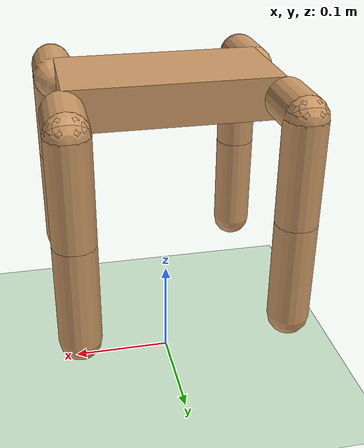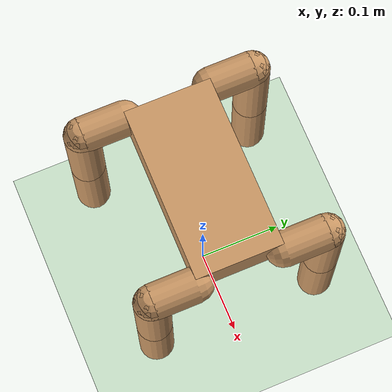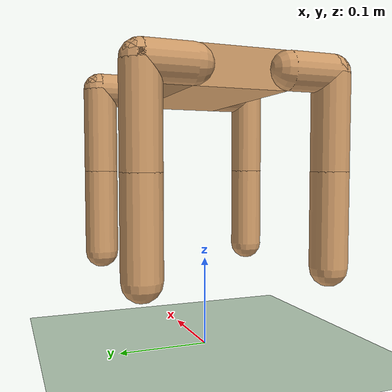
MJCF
<mujoco model="quadruped">
  <compiler angle="degree" coordinate="local" inertiafromgeom="true"/>
  <option integrator="RK4" timestep="0.01"/>
  <custom>
    <numeric data="0.0 0.0 0.55 1.0 0.0 0.0 0.0" name="init_qpos"/>
  </custom>
  <default>
    <joint armature="1" damping="1" limited="true"/>
    <geom conaffinity="0" condim="3" density="5.0" friction="1 0.5 0.5" margin="0.01" rgba="0.8 0.6 0.4 1"/>
  </default>
  <asset>
    <texture builtin="gradient" height="100" rgb1="1 1 1" rgb2="0 0 0" type="skybox" width="100"/>
    <texture builtin="flat" height="1278" mark="cross" markrgb="1 1 1" name="texgeom" random="0.01" rgb1="0.8 0.6 0.4" rgb2="0.8 0.6 0.4" type="cube" width="127"/>
    <material name="MatGnd" reflectance="0.5" shininess="1" specular="1" texrepeat="60 60" texture="texgeom"/>
    <material name="geom" texture="texgeom" texuniform="true"/>
  </asset>
  <worldbody>
    <light cutoff="100" diffuse="1 1 1" dir="-0 0 -1.3" directional="true" exponent="1" pos="0 0 1.3" specular=".1 .1 .1"/>
    <geom conaffinity="1" condim="3" name="floor" pos="0 0 0" rgba="0.8 0.9 0.8 1" size="20 20 0.1" type="plane" material="MatGnd"/>
    <body name="torso" pos="0 0 0.3">
      <camera name="track" mode="trackcom" pos="0 -3 0.3" xyaxes="1 0 0 0 0 1"/>
      <geom name="torso_geom" pos="0 0 0" size="0.1 0.05 0.02" type="box"/>
      <joint armature="0" damping="0" limited="false" margin="0.01" name="root" pos="0 0 0" type="free"/>

      <!-- Front-Right Leg -->
      <body name="FR_hip" pos="0.1 -0.05 0">
        <joint axis="1 0 0" name="FR_hip_joint" pos="0 0 0" range="-30 30" type="hinge"/>
        <geom fromto="0 0 0 0 -0.05 0" name="FR_hip_geom" size="0.02" type="capsule"/>
        <body name="FR_thigh" pos="0 -0.05 0">
          <joint axis="0 1 0" name="FR_thigh_joint" pos="0 0 0" range="-60 60" type="hinge"/>
          <geom fromto="0 0 0 0 0 -0.1" name="FR_thigh_geom" size="0.02" type="capsule"/>
          <body name="FR_calf" pos="0 0 -0.1">
            <joint axis="0 1 0" name="FR_calf_joint" pos="0 0 0" range="-150 -30" type="hinge"/>
            <geom fromto="0 0 0 0 0 -0.1" name="FR_calf_geom" size="0.02" type="capsule"/>
          </body>
        </body>
      </body>

      <!-- Front-Left Leg -->
      <body name="FL_hip" pos="0.1 0.05 0">
        <joint axis="1 0 0" name="FL_hip_joint" pos="0 0 0" range="-30 30" type="hinge"/>
        <geom fromto="0 0 0 0 0.05 0" name="FL_hip_geom" size="0.02" type="capsule"/>
        <body name="FL_thigh" pos="0 0.05 0">
          <joint axis="0 1 0" name="FL_thigh_joint" pos="0 0 0" range="-60 60" type="hinge"/>
          <geom fromto="0 0 0 0 0 -0.1" name="FL_thigh_geom" size="0.02" type="capsule"/>
          <body name="FL_calf" pos="0 0 -0.1">
            <joint axis="0 1 0" name="FL_calf_joint" pos="0 0 0" range="-150 -30" type="hinge"/>
            <geom fromto="0 0 0 0 0 -0.1" name="FL_calf_geom" size="0.02" type="capsule"/>
          </body>
        </body>
      </body>

      <!-- Back-Right Leg -->
      <body name="BR_hip" pos="-0.1 -0.05 0">
        <joint axis="1 0 0" name="BR_hip_joint" pos="0 0 0" range="-30 30" type="hinge"/>
        <geom fromto="0 0 0 0 -0.05 0" name="BR_hip_geom" size="0.02" type="capsule"/>
        <body name="BR_thigh" pos="0 -0.05 0">
          <joint axis="0 1 0" name="BR_thigh_joint" pos="0 0 0" range="-60 60" type="hinge"/>
          <geom fromto="0 0 0 0 0 -0.1" name="BR_thigh_geom" size="0.02" type="capsule"/>
          <body name="BR_calf" pos="0 0 -0.1">
            <joint axis="0 1 0" name="BR_calf_joint" pos="0 0 0" range="-150 -30" type="hinge"/>
            <geom fromto="0 0 0 0 0 -0.1" name="BR_calf_geom" size="0.02" type="capsule"/>
          </body>
        </body>
      </body>

      <!-- Back-Left Leg -->
      <body name="BL_hip" pos="-0.1 0.05 0">
        <joint axis="1 0 0" name="BL_hip_joint" pos="0 0 0" range="-30 30" type="hinge"/>
        <geom fromto="0 0 0 0 0.05 0" name="BL_hip_geom" size="0.02" type="capsule"/>
        <body name="BL_thigh" pos="0 0.05 0">
          <joint axis="0 1 0" name="BL_thigh_joint" pos="0 0 0" range="-60 60" type="hinge"/>
          <geom fromto="0 0 0 0 0 -0.1" name="BL_thigh_geom" size="0.02" type="capsule"/>
          <body name="BL_calf" pos="0 0 -0.1">
            <joint axis="0 1 0" name="BL_calf_joint" pos="0 0 0" range="-150 -30" type="hinge"/>
            <geom fromto="0 0 0 0 0 -0.1" name="BL_calf_geom" size="0.02" type="capsule"/>
          </body>
        </body>
      </body>
    </body>
  </worldbody>
  <actuator>
    <motor ctrllimited="true" ctrlrange="-1.0 1.0" gear="100" joint="FR_hip_joint"/>
    <motor ctrllimited="true" ctrlrange="-1.0 1.0" gear="100" joint="FR_thigh_joint"/>
    <motor ctrllimited="true" ctrlrange="-1.0 1.0" gear="100" joint="FR_calf_joint"/>
    <motor ctrllimited="true" ctrlrange="-1.0 1.0" gear="100" joint="FL_hip_joint"/>
    <motor ctrllimited="true" ctrlrange="-1.0 1.0" gear="100" joint="FL_thigh_joint"/>
    <motor ctrllimited="true" ctrlrange="-1.0 1.0" gear="100" joint="FL_calf_joint"/>
    <motor ctrllimited="true" ctrlrange="-1.0 1.0" gear="100" joint="BR_hip_joint"/>
    <motor ctrllimited="true" ctrlrange="-1.0 1.0" gear="100" joint="BR_thigh_joint"/>
    <motor ctrllimited="true" ctrlrange="-1.0 1.0" gear="100" joint="BR_calf_joint"/>
    <motor ctrllimited="true" ctrlrange="-1.0 1.0" gear="100" joint="BL_hip_joint"/>
    <motor ctrllimited="true" ctrlrange="-1.0 1.0" gear="100" joint="BL_thigh_joint"/>
    <motor ctrllimited="true" ctrlrange="-1.0 1.0" gear="100" joint="BL_calf_joint"/>
  </actuator>
</mujoco>
